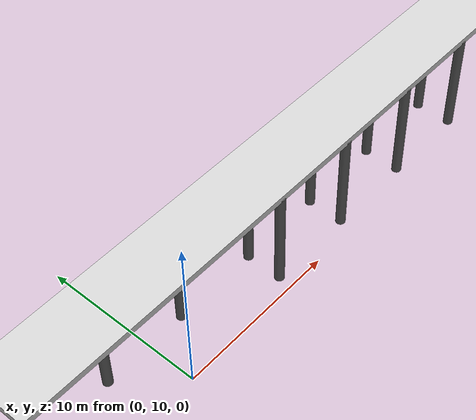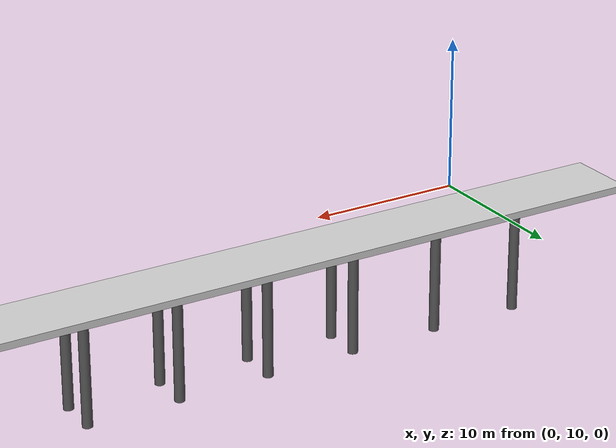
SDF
<sdf version="1.10">
 <world name="harbor">
  <model name="north_concrete_wharf_deck">
   <pose>23.500000 16.000000 1.100000 0.000000 0.000000 0.000000</pose>
   <static>true</static>
   <link name="link">
    <collision name="collision">
     <geometry><box><size>78.000000 4.500000 0.450000</size></box></geometry>
    </collision>
    <visual name="visual">
     <geometry><box><size>78.000000 4.500000 0.450000</size></box></geometry>
     <material><ambient>0.72 0.72 0.72 1</ambient><diffuse>0.82 0.82 0.82 1</diffuse></material>
    </visual>
   </link>
  </model>
  <model name="north_wharf_pile_xm24_apron">
   <pose>-0.500000 16.500000 -2.600000 0.000000 0.000000 0.000000</pose>
   <static>true</static>
   <link name="link">
    <collision name="collision">
     <geometry><cylinder><radius>0.320000</radius><length>7.200000</length></cylinder></geometry>
    </collision>
    <visual name="visual">
     <geometry><cylinder><radius>0.320000</radius><length>7.200000</length></cylinder></geometry>
     <material><ambient>0.25 0.25 0.25 1</ambient><diffuse>0.35 0.35 0.35 1</diffuse></material>
    </visual>
   </link>
  </model>
  <model name="north_wharf_pile_xm18_apron">
   <pose>5.500000 16.500000 -2.600000 0.000000 0.000000 0.000000</pose>
   <static>true</static>
   <link name="link">
    <collision name="collision">
     <geometry><cylinder><radius>0.320000</radius><length>7.200000</length></cylinder></geometry>
    </collision>
    <visual name="visual">
     <geometry><cylinder><radius>0.320000</radius><length>7.200000</length></cylinder></geometry>
     <material><ambient>0.25 0.25 0.25 1</ambient><diffuse>0.35 0.35 0.35 1</diffuse></material>
    </visual>
   </link>
  </model>
  <model name="north_wharf_pile_xm12_water">
   <pose>11.500000 14.000000 -2.600000 0.000000 0.000000 0.000000</pose>
   <static>true</static>
   <link name="link">
    <collision name="collision">
     <geometry><cylinder><radius>0.320000</radius><length>7.200000</length></cylinder></geometry>
    </collision>
    <visual name="visual">
     <geometry><cylinder><radius>0.320000</radius><length>7.200000</length></cylinder></geometry>
     <material><ambient>0.25 0.25 0.25 1</ambient><diffuse>0.35 0.35 0.35 1</diffuse></material>
    </visual>
   </link>
  </model>
  <model name="north_wharf_pile_xm12_apron">
   <pose>11.500000 16.500000 -2.600000 0.000000 0.000000 0.000000</pose>
   <static>true</static>
   <link name="link">
    <collision name="collision">
     <geometry><cylinder><radius>0.320000</radius><length>7.200000</length></cylinder></geometry>
    </collision>
    <visual name="visual">
     <geometry><cylinder><radius>0.320000</radius><length>7.200000</length></cylinder></geometry>
     <material><ambient>0.25 0.25 0.25 1</ambient><diffuse>0.35 0.35 0.35 1</diffuse></material>
    </visual>
   </link>
  </model>
  <model name="north_wharf_pile_xm6_water">
   <pose>17.500000 14.000000 -2.600000 0.000000 0.000000 0.000000</pose>
   <static>true</static>
   <link name="link">
    <collision name="collision">
     <geometry><cylinder><radius>0.320000</radius><length>7.200000</length></cylinder></geometry>
    </collision>
    <visual name="visual">
     <geometry><cylinder><radius>0.320000</radius><length>7.200000</length></cylinder></geometry>
     <material><ambient>0.25 0.25 0.25 1</ambient><diffuse>0.35 0.35 0.35 1</diffuse></material>
    </visual>
   </link>
  </model>
  <model name="north_wharf_pile_xm6_apron">
   <pose>17.500000 16.500000 -2.600000 0.000000 0.000000 0.000000</pose>
   <static>true</static>
   <link name="link">
    <collision name="collision">
     <geometry><cylinder><radius>0.320000</radius><length>7.200000</length></cylinder></geometry>
    </collision>
    <visual name="visual">
     <geometry><cylinder><radius>0.320000</radius><length>7.200000</length></cylinder></geometry>
     <material><ambient>0.25 0.25 0.25 1</ambient><diffuse>0.35 0.35 0.35 1</diffuse></material>
    </visual>
   </link>
  </model>
  <model name="north_wharf_pile_x0_water">
   <pose>23.500000 14.000000 -2.600000 0.000000 0.000000 0.000000</pose>
   <static>true</static>
   <link name="link">
    <collision name="collision">
     <geometry><cylinder><radius>0.320000</radius><length>7.200000</length></cylinder></geometry>
    </collision>
    <visual name="visual">
     <geometry><cylinder><radius>0.320000</radius><length>7.200000</length></cylinder></geometry>
     <material><ambient>0.25 0.25 0.25 1</ambient><diffuse>0.35 0.35 0.35 1</diffuse></material>
    </visual>
   </link>
  </model>
  <model name="north_wharf_pile_x0_apron">
   <pose>23.500000 16.500000 -2.600000 0.000000 0.000000 0.000000</pose>
   <static>true</static>
   <link name="link">
    <collision name="collision">
     <geometry><cylinder><radius>0.320000</radius><length>7.200000</length></cylinder></geometry>
    </collision>
    <visual name="visual">
     <geometry><cylinder><radius>0.320000</radius><length>7.200000</length></cylinder></geometry>
     <material><ambient>0.25 0.25 0.25 1</ambient><diffuse>0.35 0.35 0.35 1</diffuse></material>
    </visual>
   </link>
  </model>
  <model name="north_wharf_pile_x6_water">
   <pose>29.500000 14.000000 -2.600000 0.000000 0.000000 0.000000</pose>
   <static>true</static>
   <link name="link">
    <collision name="collision">
     <geometry><cylinder><radius>0.320000</radius><length>7.200000</length></cylinder></geometry>
    </collision>
    <visual name="visual">
     <geometry><cylinder><radius>0.320000</radius><length>7.200000</length></cylinder></geometry>
     <material><ambient>0.25 0.25 0.25 1</ambient><diffuse>0.35 0.35 0.35 1</diffuse></material>
    </visual>
   </link>
  </model>
  <model name="north_wharf_pile_x6_apron">
   <pose>29.500000 16.500000 -2.600000 0.000000 0.000000 0.000000</pose>
   <static>true</static>
   <link name="link">
    <collision name="collision">
     <geometry><cylinder><radius>0.320000</radius><length>7.200000</length></cylinder></geometry>
    </collision>
    <visual name="visual">
     <geometry><cylinder><radius>0.320000</radius><length>7.200000</length></cylinder></geometry>
     <material><ambient>0.25 0.25 0.25 1</ambient><diffuse>0.35 0.35 0.35 1</diffuse></material>
    </visual>
   </link>
  </model>
 </world>
</sdf>
